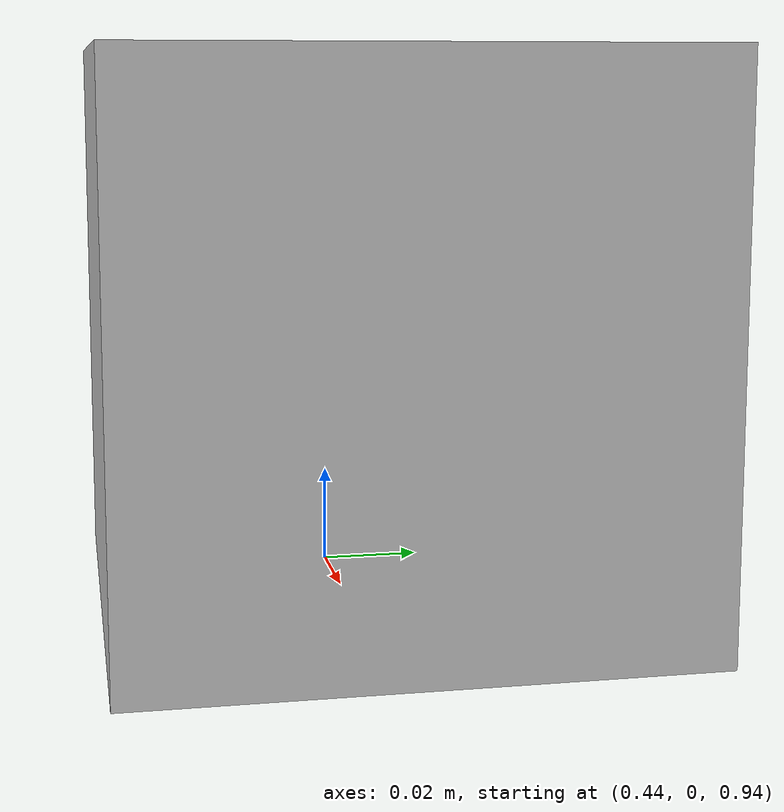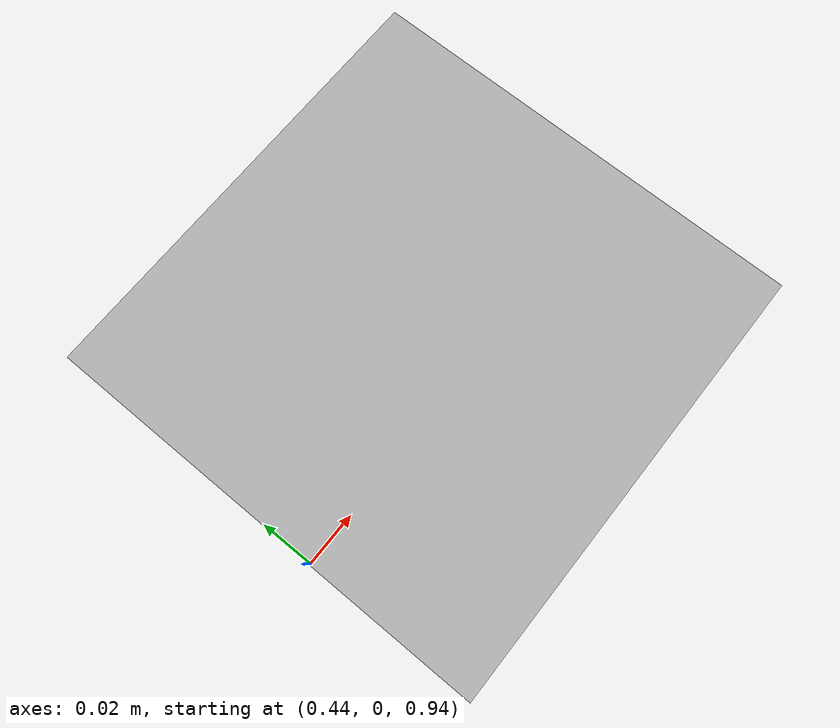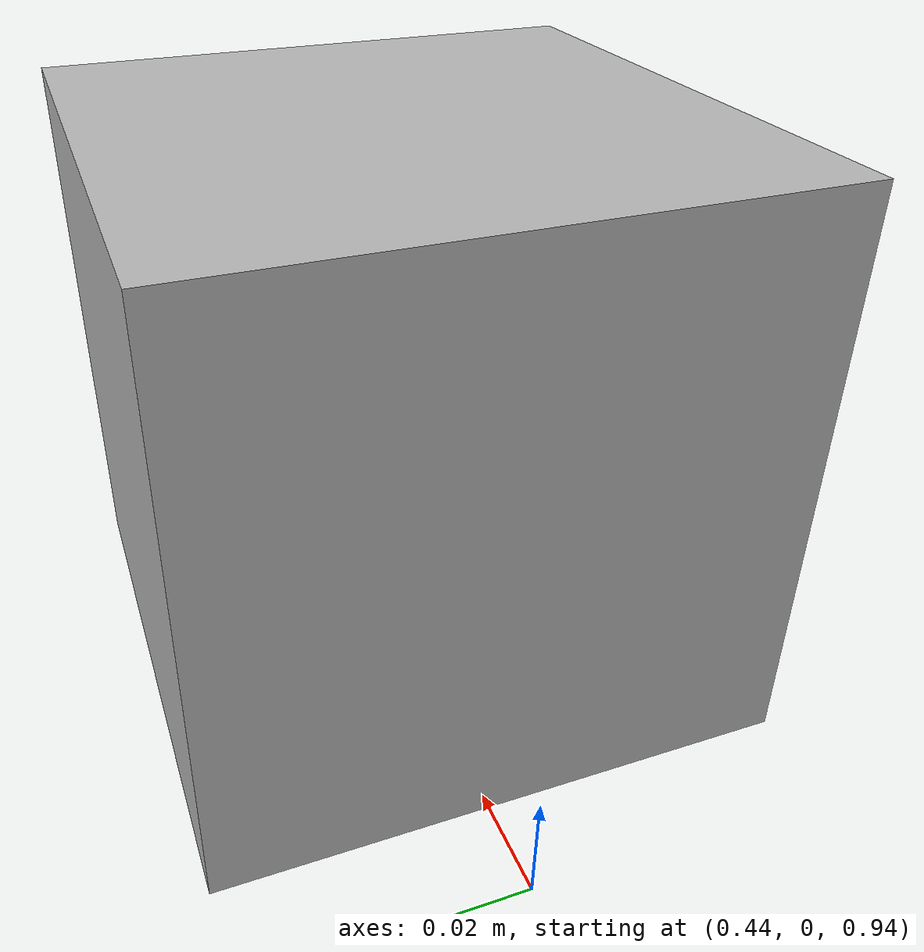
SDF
<?xml version="1.0" ?>
<sdf version="1.7">
  <model name="camera">
    <pose>0.5 0.0 1.0 0 1.5708 0</pose> <!-- Overhead view -->
    <link name="link">
      <inertial>
        <mass>0.1</mass>
        <inertia>
          <ixx>0.000166667</ixx>
          <iyy>0.000166667</iyy>
          <izz>0.000166667</izz>
        </inertia>
      </inertial>
      <collision name="collision">
        <geometry>
          <box>
            <size>0.1 0.1 0.1</size>
          </box>
        </geometry>
      </collision>
      <visual name="visual">
        <geometry>
          <box>
            <size>0.1 0.1 0.1</size>
          </box>
        </geometry>
      </visual>
      <sensor name="camera" type="camera">
        <camera>
          <horizontal_fov>1.047</horizontal_fov>
          <image>
            <width>640</width>
            <height>480</height>
          </image>
          <clip>
            <near>0.1</near>
            <far>100</far>
          </clip>
        </camera>
        <always_on>1</always_on>
        <update_rate>30</update_rate>
        <visualize>true</visualize>
        <topic>overhead_camera/image_raw</topic>
      </sensor>
    </link>
    <static>true</static>
  </model>
</sdf>
